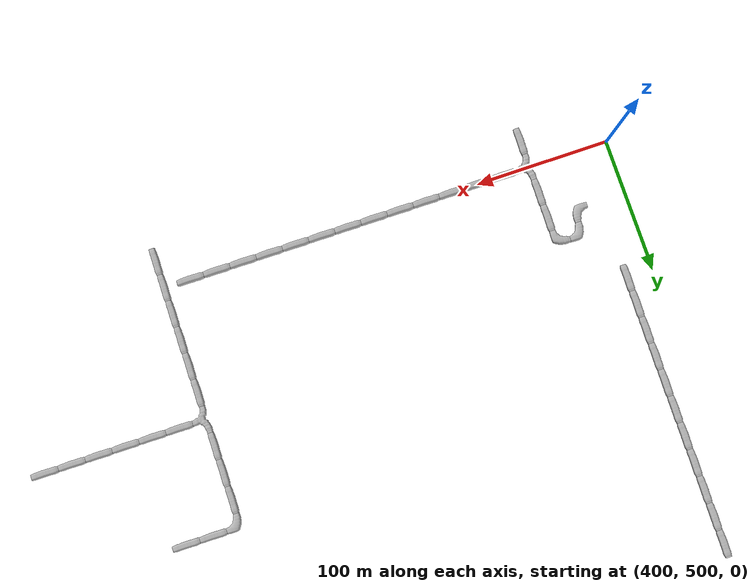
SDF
<sdf version="1.6">
 <world name="cave_16000_0">
  <include>
   <static>true</static>
   <name>cave_37_24</name>
   <pose>740 480 0 0 0 0.0</pose>
   <uri>model://cave_straight_20m</uri>
  </include>
  <include>
   <static>true</static>
   <name>cave_37_25</name>
   <pose>740 500 0 0 0 0.0</pose>
   <uri>model://cave_straight_20m</uri>
  </include>
  <include>
   <static>true</static>
   <name>cave_37_26</name>
   <pose>740 520 0 0 0 0.0</pose>
   <uri>model://cave_straight_20m</uri>
  </include>
  <include>
   <static>true</static>
   <name>cave_37_27</name>
   <pose>740 540 0 0 0 0.0</pose>
   <uri>model://cave_straight_20m</uri>
  </include>
  <include>
   <static>true</static>
   <name>cave_37_28</name>
   <pose>740 560 0 0 0 0.0</pose>
   <uri>model://cave_straight_20m</uri>
  </include>
  <include>
   <static>true</static>
   <name>cave_37_29</name>
   <pose>740 580 0 0 0 0.0</pose>
   <uri>model://cave_straight_20m</uri>
  </include>
  <include>
   <static>true</static>
   <name>cave_37_30</name>
   <pose>740 600 0 0 0 -1.5707963267948966</pose>
   <uri>model://cave_3way_20m</uri>
  </include>
  <include>
   <static>true</static>
   <name>cave_38_30</name>
   <pose>760 600 0 0 0 1.5707963267948966</pose>
   <uri>model://cave_straight_20m</uri>
  </include>
  <include>
   <static>true</static>
   <name>cave_39_30</name>
   <pose>780 600 0 0 0 1.5707963267948966</pose>
   <uri>model://cave_straight_20m</uri>
  </include>
  <include>
   <static>true</static>
   <name>cave_40_30</name>
   <pose>800 600 0 0 0 1.5707963267948966</pose>
   <uri>model://cave_straight_20m</uri>
  </include>
  <include>
   <static>true</static>
   <name>cave_41_30</name>
   <pose>820 600 0 0 0 1.5707963267948966</pose>
   <uri>model://cave_straight_20m</uri>
  </include>
  <include>
   <static>true</static>
   <name>cave_42_30</name>
   <pose>840 600 0 0 0 1.5707963267948966</pose>
   <uri>model://cave_straight_20m</uri>
  </include>
  <include>
   <static>true</static>
   <name>cave_43_30</name>
   <pose>860 600 0 0 0 1.5707963267948966</pose>
   <uri>model://cave_straight_20m</uri>
  </include>
  <include>
   <static>true</static>
   <name>cave_37_31</name>
   <pose>740 620 0 0 0 0.0</pose>
   <uri>model://cave_straight_20m</uri>
  </include>
  <include>
   <static>true</static>
   <name>cave_37_32</name>
   <pose>740 640 0 0 0 0.0</pose>
   <uri>model://cave_straight_20m</uri>
  </include>
  <include>
   <static>true</static>
   <name>cave_37_33</name>
   <pose>740 660 0 0 0 0.0</pose>
   <uri>model://cave_straight_20m</uri>
  </include>
  <include>
   <static>true</static>
   <name>cave_37_34</name>
   <pose>740 680 0 0 0 -1.5707963267948966</pose>
   <uri>model://cave_L_20m</uri>
  </include>
  <include>
   <static>true</static>
   <name>cave_38_34</name>
   <pose>760 680 0 0 0 1.5707963267948966</pose>
   <uri>model://cave_straight_20m</uri>
  </include>
  <include>
   <static>true</static>
   <name>cave_39_34</name>
   <pose>780 680 0 0 0 1.5707963267948966</pose>
   <uri>model://cave_straight_20m</uri>
  </include>
  <include>
   <static>true</static>
   <name>cave_23_24</name>
   <pose>460 480 0 0 0 0.0</pose>
   <uri>model://cave_straight_20m</uri>
  </include>
  <include>
   <static>true</static>
   <name>cave_23_25</name>
   <pose>460 500 0 0 0 -1.5707963267948966</pose>
   <uri>model://cave_3way_20m</uri>
  </include>
  <include>
   <static>true</static>
   <name>cave_24_25</name>
   <pose>480 500 0 0 0 1.5707963267948966</pose>
   <uri>model://cave_straight_20m</uri>
  </include>
  <include>
   <static>true</static>
   <name>cave_25_25</name>
   <pose>500 500 0 0 0 1.5707963267948966</pose>
   <uri>model://cave_straight_20m</uri>
  </include>
  <include>
   <static>true</static>
   <name>cave_26_25</name>
   <pose>520 500 0 0 0 1.5707963267948966</pose>
   <uri>model://cave_straight_20m</uri>
  </include>
  <include>
   <static>true</static>
   <name>cave_27_25</name>
   <pose>540 500 0 0 0 1.5707963267948966</pose>
   <uri>model://cave_straight_20m</uri>
  </include>
  <include>
   <static>true</static>
   <name>cave_28_25</name>
   <pose>560 500 0 0 0 1.5707963267948966</pose>
   <uri>model://cave_straight_20m</uri>
  </include>
  <include>
   <static>true</static>
   <name>cave_29_25</name>
   <pose>580 500 0 0 0 1.5707963267948966</pose>
   <uri>model://cave_straight_20m</uri>
  </include>
  <include>
   <static>true</static>
   <name>cave_30_25</name>
   <pose>600 500 0 0 0 1.5707963267948966</pose>
   <uri>model://cave_straight_20m</uri>
  </include>
  <include>
   <static>true</static>
   <name>cave_31_25</name>
   <pose>620 500 0 0 0 1.5707963267948966</pose>
   <uri>model://cave_straight_20m</uri>
  </include>
  <include>
   <static>true</static>
   <name>cave_32_25</name>
   <pose>640 500 0 0 0 1.5707963267948966</pose>
   <uri>model://cave_straight_20m</uri>
  </include>
  <include>
   <static>true</static>
   <name>cave_33_25</name>
   <pose>660 500 0 0 0 1.5707963267948966</pose>
   <uri>model://cave_straight_20m</uri>
  </include>
  <include>
   <static>true</static>
   <name>cave_34_25</name>
   <pose>680 500 0 0 0 1.5707963267948966</pose>
   <uri>model://cave_straight_20m</uri>
  </include>
  <include>
   <static>true</static>
   <name>cave_35_25</name>
   <pose>700 500 0 0 0 1.5707963267948966</pose>
   <uri>model://cave_straight_20m</uri>
  </include>
  <include>
   <static>true</static>
   <name>cave_36_25</name>
   <pose>720 500 0 0 0 1.5707963267948966</pose>
   <uri>model://cave_straight_20m</uri>
  </include>
  <include>
   <static>true</static>
   <name>cave_23_26</name>
   <pose>460 520 0 0 0 0.0</pose>
   <uri>model://cave_straight_20m</uri>
  </include>
  <include>
   <static>true</static>
   <name>cave_23_27</name>
   <pose>460 540 0 0 0 0.0</pose>
   <uri>model://cave_straight_20m</uri>
  </include>
  <include>
   <static>true</static>
   <name>cave_23_28</name>
   <pose>460 560 0 0 0 3.141592653589793</pose>
   <uri>model://cave_L_20m</uri>
  </include>
  <include>
   <static>true</static>
   <name>cave_22_28</name>
   <pose>440 560 0 0 0 -1.5707963267948966</pose>
   <uri>model://cave_L_20m</uri>
  </include>
  <include>
   <static>true</static>
   <name>cave_22_27</name>
   <pose>440 540 0 0 0 1.5707963267948966</pose>
   <uri>model://cave_L_20m</uri>
  </include>
  <include>
   <static>true</static>
   <name>cave_21_30</name>
   <pose>420 600 0 0 0 0.0</pose>
   <uri>model://cave_straight_20m</uri>
  </include>
  <include>
   <static>true</static>
   <name>cave_21_31</name>
   <pose>420 620 0 0 0 0.0</pose>
   <uri>model://cave_straight_20m</uri>
  </include>
  <include>
   <static>true</static>
   <name>cave_21_32</name>
   <pose>420 640 0 0 0 0.0</pose>
   <uri>model://cave_straight_20m</uri>
  </include>
  <include>
   <static>true</static>
   <name>cave_21_33</name>
   <pose>420 660 0 0 0 0.0</pose>
   <uri>model://cave_straight_20m</uri>
  </include>
  <include>
   <static>true</static>
   <name>cave_21_34</name>
   <pose>420 680 0 0 0 0.0</pose>
   <uri>model://cave_straight_20m</uri>
  </include>
  <include>
   <static>true</static>
   <name>cave_21_35</name>
   <pose>420 700 0 0 0 0.0</pose>
   <uri>model://cave_straight_20m</uri>
  </include>
  <include>
   <static>true</static>
   <name>cave_21_36</name>
   <pose>420 720 0 0 0 0.0</pose>
   <uri>model://cave_straight_20m</uri>
  </include>
  <include>
   <static>true</static>
   <name>cave_21_37</name>
   <pose>420 740 0 0 0 0.0</pose>
   <uri>model://cave_straight_20m</uri>
  </include>
  <include>
   <static>true</static>
   <name>cave_21_38</name>
   <pose>420 760 0 0 0 0.0</pose>
   <uri>model://cave_straight_20m</uri>
  </include>
  <include>
   <static>true</static>
   <name>cave_21_39</name>
   <pose>420 780 0 0 0 0.0</pose>
   <uri>model://cave_straight_20m</uri>
  </include>
  <include>
   <static>true</static>
   <name>cave_21_40</name>
   <pose>420 800 0 0 0 0.0</pose>
   <uri>model://cave_straight_20m</uri>
  </include>
 </world>
</sdf>
